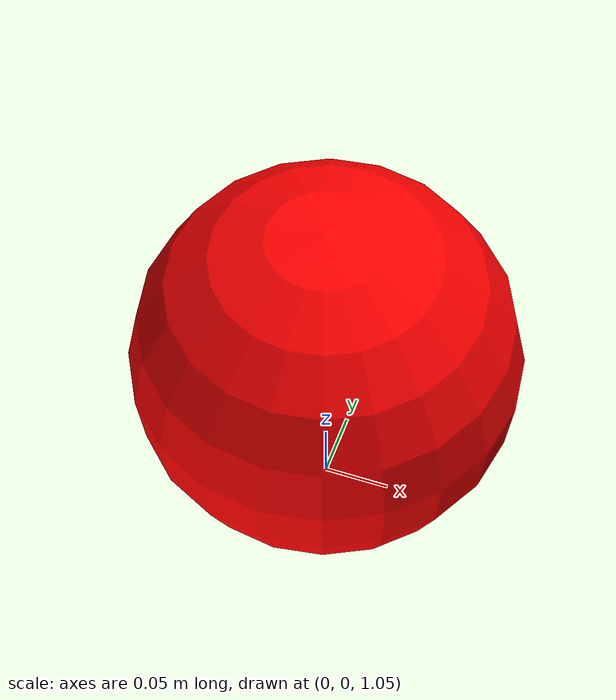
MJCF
<mujoco model="robot1">
    <option timestep="0.005" />
    <worldbody>
        <body name="robot" pos="0 0 1.2">
            <joint axis="1 0 0" damping="0.1" name="robot:slide0" pos="0 0 0" type="slide"/>
            <geom mass="1.0" pos="0 0 0" rgba="1 0 0 1" size="0.15" type="sphere"/>
        </body>
    </worldbody>
</mujoco>
